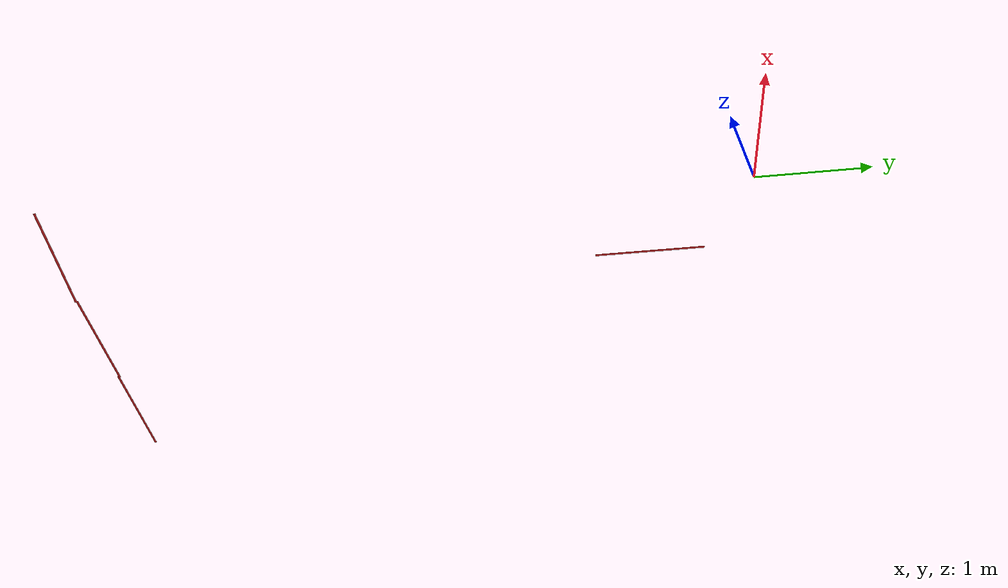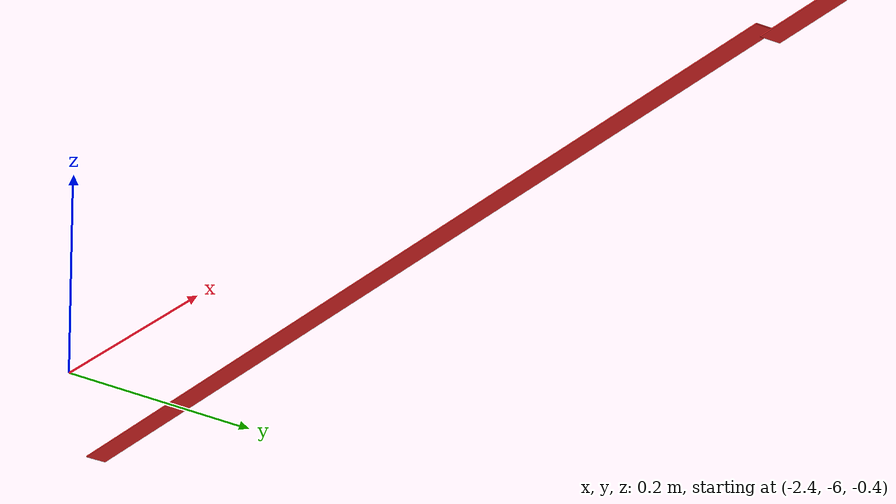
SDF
<?xml version='1.0'?>
<sdf version='1.5'>
  <model name='unit_box_1'>
    <link name='link'>
      <inertial>
        <mass>1</mass>
        <inertia>
          <ixx>0.166667</ixx>
          <ixy>0</ixy>
          <ixz>0</ixz>
          <iyy>0.166667</iyy>
          <iyz>0</iyz>
          <izz>0.166667</izz>
        </inertia>
        <pose>0 0 0 0 -0 0</pose>
      </inertial>
      <self_collide>0</self_collide>
      <enable_wind>0</enable_wind>
      <kinematic>0</kinematic>
      <pose>-0.742059 -0.885679 0 0 -0 0</pose>
      <gravity>1</gravity>
      <visual name='visual'>
        <geometry>
          <box>
            <size>0.02 1 0.001</size>
          </box>
        </geometry>
        <material>
          <script>
            <name>Gazebo/Grey</name>
            <uri>file://media/materials/scripts/gazebo.material</uri>
          </script>
          <shader type='pixel'>
            <normal_map>__default__</normal_map>
          </shader>
          <ambient>0.8 0 0 1</ambient>
          <diffuse>0.937 0.161 0.161 1</diffuse>
          <specular>0.01 0.01 0.01 1</specular>
          <emissive>0 0 0 1</emissive>
        </material>
        <pose>0 0 0 0 -0 0</pose>
        <transparency>0</transparency>
        <cast_shadows>1</cast_shadows>
      </visual>
    </link>
    <link name='link_clone'>
      <inertial>
        <mass>1</mass>
        <inertia>
          <ixx>0.166667</ixx>
          <ixy>0</ixy>
          <ixz>0</ixz>
          <iyy>0.166667</iyy>
          <iyz>0</iyz>
          <izz>0.166667</izz>
        </inertia>
        <pose>0 0 0 0 -0 0</pose>
      </inertial>
      <self_collide>0</self_collide>
      <enable_wind>0</enable_wind>
      <kinematic>0</kinematic>
      <pose>-1.86627 -6.01371 -0.496062 0 -0 1.52824</pose>
      <gravity>1</gravity>
      <visual name='visual'>
        <geometry>
          <box>
            <size>0.02 1 0.001</size>
          </box>
        </geometry>
        <material>
          <script>
            <name>Gazebo/Grey</name>
            <uri>file://media/materials/scripts/gazebo.material</uri>
          </script>
          <shader type='pixel'>
            <normal_map>__default__</normal_map>
          </shader>
          <ambient>0.8 0 0 1</ambient>
          <diffuse>0.937 0.161 0.161 1</diffuse>
          <specular>0.01 0.01 0.01 1</specular>
          <emissive>0 0 0 1</emissive>
        </material>
        <pose>0 0 0 0 -0 0</pose>
        <transparency>0</transparency>
        <cast_shadows>1</cast_shadows>
      </visual>
    </link>
    <link name='link_clone_clone'>
      <inertial>
        <mass>1</mass>
        <inertia>
          <ixx>0.166667</ixx>
          <ixy>0</ixy>
          <ixz>0</ixz>
          <iyy>0.166667</iyy>
          <iyz>0</iyz>
          <izz>0.166667</izz>
        </inertia>
        <pose>0 0 0 0 -0 0</pose>
      </inertial>
      <self_collide>0</self_collide>
      <enable_wind>0</enable_wind>
      <kinematic>0</kinematic>
      <pose>-0.878594 -6.04321 -0.498595 0 -0 1.52824</pose>
      <gravity>1</gravity>
      <visual name='visual'>
        <geometry>
          <box>
            <size>0.02 1 0.001</size>
          </box>
        </geometry>
        <material>
          <script>
            <name>Gazebo/Grey</name>
            <uri>file://media/materials/scripts/gazebo.material</uri>
          </script>
          <shader type='pixel'>
            <normal_map>__default__</normal_map>
          </shader>
          <ambient>0.8 0 0 1</ambient>
          <diffuse>0.937 0.161 0.161 1</diffuse>
          <specular>0.01 0.01 0.01 1</specular>
          <emissive>0 0 0 1</emissive>
        </material>
        <pose>0 0 0 0 -0 0</pose>
        <transparency>0</transparency>
        <cast_shadows>1</cast_shadows>
      </visual>
    </link>
    <link name='link_clone_clone_0'>
      <inertial>
        <mass>1</mass>
        <inertia>
          <ixx>0.166667</ixx>
          <ixy>0</ixy>
          <ixz>0</ixz>
          <iyy>0.166667</iyy>
          <iyz>0</iyz>
          <izz>0.166667</izz>
        </inertia>
        <pose>0 0 0 0 -0 0</pose>
      </inertial>
      <self_collide>0</self_collide>
      <enable_wind>0</enable_wind>
      <kinematic>0</kinematic>
      <pose>0.106494 -6.06469 -0.496062 0 -0 1.59688</pose>
      <gravity>1</gravity>
      <visual name='visual'>
        <geometry>
          <box>
            <size>0.02 1 0.001</size>
          </box>
        </geometry>
        <material>
          <script>
            <name>Gazebo/Grey</name>
            <uri>file://media/materials/scripts/gazebo.material</uri>
          </script>
          <shader type='pixel'>
            <normal_map>__default__</normal_map>
          </shader>
          <ambient>0.8 0 0 1</ambient>
          <diffuse>0.937 0.161 0.161 1</diffuse>
          <specular>0.01 0.01 0.01 1</specular>
          <emissive>0 0 0 1</emissive>
        </material>
        <pose>0 0 0 0 -0 0</pose>
        <transparency>0</transparency>
        <cast_shadows>1</cast_shadows>
      </visual>
    </link>
    <static>0</static>
    <allow_auto_disable>1</allow_auto_disable>
  </model>
</sdf>
